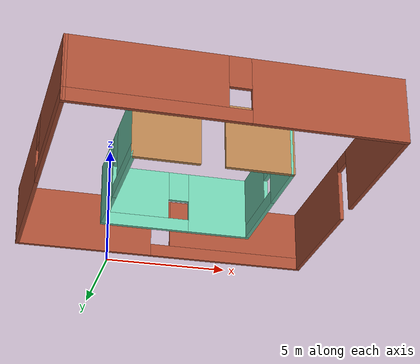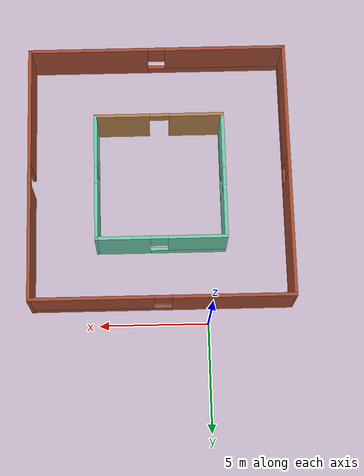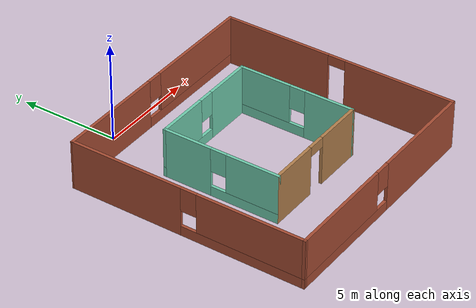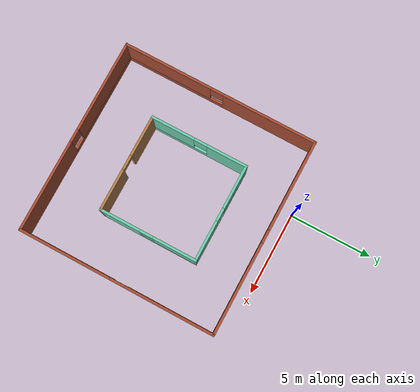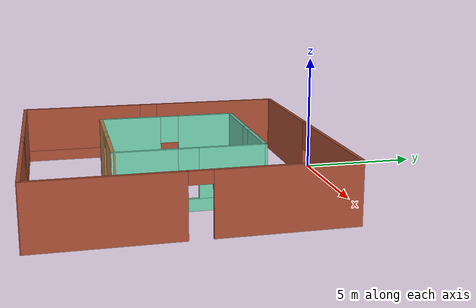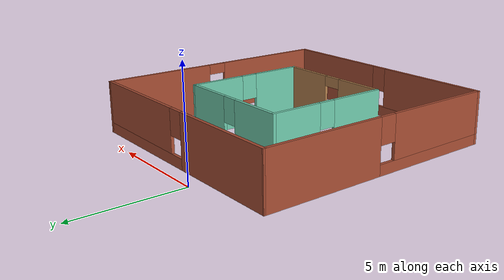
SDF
<?xml version='1.0'?>
<sdf version='1.6'>
  <model name='prasunhouse'>
    <pose frame=''>2.10975 -6.7285 0 0 -0 0</pose>
    <link name='Wall_0'>
      <pose frame=''>-5.92475 0 0 0 0 -1.57164</pose>
      <visual name='Wall_0_Visual_0'>
        <pose frame=''>-3.11856 0 1.25 0 -0 0</pose>
        <geometry>
          <box>
            <size>5.78989 0.15 2.5</size>
          </box>
        </geometry>
        <material>
          <script>
            <uri>file://media/materials/scripts/gazebo.material</uri>
            <name>Gazebo/Bricks</name>
          </script>
          <ambient>1 1 1 1</ambient>
        </material>
        <meta>
          <layer>0</layer>
        </meta>
      </visual>
      <collision name='Wall_0_Collision_0'>
        <geometry>
          <box>
            <size>5.78989 0.15 2.5</size>
          </box>
        </geometry>
        <pose frame=''>-3.11856 0 1.25 0 -0 0</pose>
      </collision>
      <visual name='Wall_0_Visual_1'>
        <pose frame=''>2.89495 0 0.25 0 -0 0</pose>
        <geometry>
          <box>
            <size>6.23711 0.15 0.5</size>
          </box>
        </geometry>
        <material>
          <script>
            <uri>file://media/materials/scripts/gazebo.material</uri>
            <name>Gazebo/Bricks</name>
          </script>
          <ambient>1 1 1 1</ambient>
        </material>
        <meta>
          <layer>0</layer>
        </meta>
      </visual>
      <collision name='Wall_0_Collision_1'>
        <geometry>
          <box>
            <size>6.23711 0.15 0.5</size>
          </box>
        </geometry>
        <pose frame=''>2.89495 0 0.25 0 -0 0</pose>
      </collision>
      <visual name='Wall_0_Visual_2'>
        <pose frame=''>3.29495 0 1.5 0 -0 0</pose>
        <geometry>
          <box>
            <size>5.43711 0.15 2</size>
          </box>
        </geometry>
        <material>
          <script>
            <uri>file://media/materials/scripts/gazebo.material</uri>
            <name>Gazebo/Bricks</name>
          </script>
          <ambient>1 1 1 1</ambient>
        </material>
        <meta>
          <layer>0</layer>
        </meta>
      </visual>
      <collision name='Wall_0_Collision_2'>
        <geometry>
          <box>
            <size>5.43711 0.15 2</size>
          </box>
        </geometry>
        <pose frame=''>3.29495 0 1.5 0 -0 0</pose>
      </collision>
      <visual name='Wall_0_Visual_3'>
        <pose frame=''>0.176392 0 1.9 0 -0 0</pose>
        <geometry>
          <box>
            <size>0.8 0.15 1.2</size>
          </box>
        </geometry>
        <material>
          <script>
            <uri>file://media/materials/scripts/gazebo.material</uri>
            <name>Gazebo/Bricks</name>
          </script>
          <ambient>1 1 1 1</ambient>
        </material>
        <meta>
          <layer>0</layer>
        </meta>
      </visual>
      <collision name='Wall_0_Collision_3'>
        <geometry>
          <box>
            <size>0.8 0.15 1.2</size>
          </box>
        </geometry>
        <pose frame=''>0.176392 0 1.9 0 -0 0</pose>
      </collision>
    </link>
    <link name='Wall_14'>
      <pose frame=''>-0.00525 -5.9385 0 0 -0 3.14159</pose>
      <visual name='Wall_14_Visual_0'>
        <pose frame=''>-3.20955 0 1.25 0 -0 0</pose>
        <geometry>
          <box>
            <size>5.5809 0.15 2.5</size>
          </box>
        </geometry>
        <material>
          <script>
            <uri>file://media/materials/scripts/gazebo.material</uri>
            <name>Gazebo/Bricks</name>
          </script>
          <ambient>1 1 1 1</ambient>
        </material>
        <meta>
          <layer>0</layer>
        </meta>
      </visual>
      <collision name='Wall_14_Collision_0'>
        <geometry>
          <box>
            <size>5.5809 0.15 2.5</size>
          </box>
        </geometry>
        <pose frame=''>-3.20955 0 1.25 0 -0 0</pose>
      </collision>
      <visual name='Wall_14_Visual_1'>
        <pose frame=''>2.79045 0 0.25 0 -0 0</pose>
        <geometry>
          <box>
            <size>6.4191 0.15 0.5</size>
          </box>
        </geometry>
        <material>
          <script>
            <uri>file://media/materials/scripts/gazebo.material</uri>
            <name>Gazebo/Bricks</name>
          </script>
          <ambient>1 1 1 1</ambient>
        </material>
        <meta>
          <layer>0</layer>
        </meta>
      </visual>
      <collision name='Wall_14_Collision_1'>
        <geometry>
          <box>
            <size>6.4191 0.15 0.5</size>
          </box>
        </geometry>
        <pose frame=''>2.79045 0 0.25 0 -0 0</pose>
      </collision>
      <visual name='Wall_14_Visual_2'>
        <pose frame=''>3.19045 0 1.5 0 -0 0</pose>
        <geometry>
          <box>
            <size>5.6191 0.15 2</size>
          </box>
        </geometry>
        <material>
          <script>
            <uri>file://media/materials/scripts/gazebo.material</uri>
            <name>Gazebo/Bricks</name>
          </script>
          <ambient>1 1 1 1</ambient>
        </material>
        <meta>
          <layer>0</layer>
        </meta>
      </visual>
      <collision name='Wall_14_Collision_2'>
        <geometry>
          <box>
            <size>5.6191 0.15 2</size>
          </box>
        </geometry>
        <pose frame=''>3.19045 0 1.5 0 -0 0</pose>
      </collision>
      <visual name='Wall_14_Visual_3'>
        <pose frame=''>-0.0191 0 1.9 0 -0 0</pose>
        <geometry>
          <box>
            <size>0.8 0.15 1.2</size>
          </box>
        </geometry>
        <material>
          <script>
            <uri>file://media/materials/scripts/gazebo.material</uri>
            <name>Gazebo/Bricks</name>
          </script>
          <ambient>1 1 1 1</ambient>
        </material>
        <meta>
          <layer>0</layer>
        </meta>
      </visual>
      <collision name='Wall_14_Collision_3'>
        <geometry>
          <box>
            <size>0.8 0.15 1.2</size>
          </box>
        </geometry>
        <pose frame=''>-0.0191 0 1.9 0 -0 0</pose>
      </collision>
    </link>
    <link name='Wall_2'>
      <pose frame=''>0.00525 5.9385 0 0 -0 0</pose>
      <visual name='Wall_2_Visual_0'>
        <pose frame=''>-3.22646 0 1.25 0 -0 0</pose>
        <geometry>
          <box>
            <size>5.54707 0.15 2.5</size>
          </box>
        </geometry>
        <material>
          <script>
            <uri>file://media/materials/scripts/gazebo.material</uri>
            <name>Gazebo/Bricks</name>
          </script>
          <ambient>1 1 1 1</ambient>
        </material>
        <meta>
          <layer>0</layer>
        </meta>
      </visual>
      <collision name='Wall_2_Collision_0'>
        <geometry>
          <box>
            <size>5.54707 0.15 2.5</size>
          </box>
        </geometry>
        <pose frame=''>-3.22646 0 1.25 0 -0 0</pose>
      </collision>
      <visual name='Wall_2_Visual_1'>
        <pose frame=''>2.77354 0 0.25 0 -0 0</pose>
        <geometry>
          <box>
            <size>6.45293 0.15 0.5</size>
          </box>
        </geometry>
        <material>
          <script>
            <uri>file://media/materials/scripts/gazebo.material</uri>
            <name>Gazebo/Bricks</name>
          </script>
          <ambient>1 1 1 1</ambient>
        </material>
        <meta>
          <layer>0</layer>
        </meta>
      </visual>
      <collision name='Wall_2_Collision_1'>
        <geometry>
          <box>
            <size>6.45293 0.15 0.5</size>
          </box>
        </geometry>
        <pose frame=''>2.77354 0 0.25 0 -0 0</pose>
      </collision>
      <visual name='Wall_2_Visual_2'>
        <pose frame=''>3.17354 0 1.5 0 -0 0</pose>
        <geometry>
          <box>
            <size>5.65293 0.15 2</size>
          </box>
        </geometry>
        <material>
          <script>
            <uri>file://media/materials/scripts/gazebo.material</uri>
            <name>Gazebo/Bricks</name>
          </script>
          <ambient>1 1 1 1</ambient>
        </material>
        <meta>
          <layer>0</layer>
        </meta>
      </visual>
      <collision name='Wall_2_Collision_2'>
        <geometry>
          <box>
            <size>5.65293 0.15 2</size>
          </box>
        </geometry>
        <pose frame=''>3.17354 0 1.5 0 -0 0</pose>
      </collision>
      <visual name='Wall_2_Visual_3'>
        <pose frame=''>-0.052928 0 1.9 0 -0 0</pose>
        <geometry>
          <box>
            <size>0.8 0.15 1.2</size>
          </box>
        </geometry>
        <material>
          <script>
            <uri>file://media/materials/scripts/gazebo.material</uri>
            <name>Gazebo/Bricks</name>
          </script>
          <ambient>1 1 1 1</ambient>
        </material>
        <meta>
          <layer>0</layer>
        </meta>
      </visual>
      <collision name='Wall_2_Collision_3'>
        <geometry>
          <box>
            <size>0.8 0.15 1.2</size>
          </box>
        </geometry>
        <pose frame=''>-0.052928 0 1.9 0 -0 0</pose>
      </collision>
    </link>
    <link name='Wall_25'>
      <pose frame=''>-2.94775 0.2825 0 0 0 -1.5708</pose>
      <visual name='Wall_25_Visual_0'>
        <pose frame=''>-1.74744 0 1.25 0 -0 0</pose>
        <geometry>
          <box>
            <size>2.50512 0.15 2.5</size>
          </box>
        </geometry>
        <material>
          <script>
            <uri>file://media/materials/scripts/gazebo.material</uri>
            <name>Gazebo/Grey</name>
          </script>
          <ambient>0.435294 0.796078 0.67451 1</ambient>
        </material>
        <meta>
          <layer>0</layer>
        </meta>
      </visual>
      <collision name='Wall_25_Collision_0'>
        <geometry>
          <box>
            <size>2.50512 0.15 2.5</size>
          </box>
        </geometry>
        <pose frame=''>-1.74744 0 1.25 0 -0 0</pose>
      </collision>
      <visual name='Wall_25_Visual_1'>
        <pose frame=''>1.25256 0 0.25 0 -0 0</pose>
        <geometry>
          <box>
            <size>3.49488 0.15 0.5</size>
          </box>
        </geometry>
        <material>
          <script>
            <uri>file://media/materials/scripts/gazebo.material</uri>
            <name>Gazebo/Grey</name>
          </script>
          <ambient>0.435294 0.796078 0.67451 1</ambient>
        </material>
        <meta>
          <layer>0</layer>
        </meta>
      </visual>
      <collision name='Wall_25_Collision_1'>
        <geometry>
          <box>
            <size>3.49488 0.15 0.5</size>
          </box>
        </geometry>
        <pose frame=''>1.25256 0 0.25 0 -0 0</pose>
      </collision>
      <visual name='Wall_25_Visual_2'>
        <pose frame=''>1.65256 0 1.5 0 -0 0</pose>
        <geometry>
          <box>
            <size>2.69488 0.15 2</size>
          </box>
        </geometry>
        <material>
          <script>
            <uri>file://media/materials/scripts/gazebo.material</uri>
            <name>Gazebo/Grey</name>
          </script>
          <ambient>0.435294 0.796078 0.67451 1</ambient>
        </material>
        <meta>
          <layer>0</layer>
        </meta>
      </visual>
      <collision name='Wall_25_Collision_2'>
        <geometry>
          <box>
            <size>2.69488 0.15 2</size>
          </box>
        </geometry>
        <pose frame=''>1.65256 0 1.5 0 -0 0</pose>
      </collision>
      <visual name='Wall_25_Visual_3'>
        <pose frame=''>-0.094884 0 1.9 0 -0 0</pose>
        <geometry>
          <box>
            <size>0.8 0.15 1.2</size>
          </box>
        </geometry>
        <material>
          <script>
            <uri>file://media/materials/scripts/gazebo.material</uri>
            <name>Gazebo/Grey</name>
          </script>
          <ambient>0.435294 0.796078 0.67451 1</ambient>
        </material>
        <meta>
          <layer>0</layer>
        </meta>
      </visual>
      <collision name='Wall_25_Collision_3'>
        <geometry>
          <box>
            <size>0.8 0.15 1.2</size>
          </box>
        </geometry>
        <pose frame=''>-0.094884 0 1.9 0 -0 0</pose>
      </collision>
    </link>
    <link name='Wall_26'>
      <pose frame=''>-0.02275 -2.6425 0 0 -0 0</pose>
      <visual name='Wall_26_Visual_0'>
        <pose frame=''>-1.73746 0 1.25 0 -0 0</pose>
        <geometry>
          <box>
            <size>2.52507 0.15 2.5</size>
          </box>
        </geometry>
        <material>
          <script>
            <uri>file://media/materials/scripts/gazebo.material</uri>
            <name>Gazebo/Wood</name>
          </script>
          <ambient>1 1 1 1</ambient>
        </material>
        <meta>
          <layer>0</layer>
        </meta>
      </visual>
      <collision name='Wall_26_Collision_0'>
        <geometry>
          <box>
            <size>2.52507 0.15 2.5</size>
          </box>
        </geometry>
        <pose frame=''>-1.73746 0 1.25 0 -0 0</pose>
      </collision>
      <visual name='Wall_26_Visual_1'>
        <pose frame=''>1.71254 0 1.25 0 -0 0</pose>
        <geometry>
          <box>
            <size>2.57493 0.15 2.5</size>
          </box>
        </geometry>
        <material>
          <script>
            <uri>file://media/materials/scripts/gazebo.material</uri>
            <name>Gazebo/Wood</name>
          </script>
          <ambient>1 1 1 1</ambient>
        </material>
        <meta>
          <layer>0</layer>
        </meta>
      </visual>
      <collision name='Wall_26_Collision_1'>
        <geometry>
          <box>
            <size>2.57493 0.15 2.5</size>
          </box>
        </geometry>
        <pose frame=''>1.71254 0 1.25 0 -0 0</pose>
      </collision>
      <visual name='Wall_26_Visual_2'>
        <pose frame=''>-0.024928 0 2.25 0 -0 0</pose>
        <geometry>
          <box>
            <size>0.9 0.15 0.5</size>
          </box>
        </geometry>
        <material>
          <script>
            <uri>file://media/materials/scripts/gazebo.material</uri>
            <name>Gazebo/Wood</name>
          </script>
          <ambient>1 1 1 1</ambient>
        </material>
        <meta>
          <layer>0</layer>
        </meta>
      </visual>
      <collision name='Wall_26_Collision_2'>
        <geometry>
          <box>
            <size>0.9 0.15 0.5</size>
          </box>
        </geometry>
        <pose frame=''>-0.024928 0 2.25 0 -0 0</pose>
      </collision>
    </link>
    <link name='Wall_27'>
      <pose frame=''>2.90175 0.2825 0 0 -0 1.57097</pose>
      <visual name='Wall_27_Visual_0'>
        <pose frame=''>-1.74486 0 1.25 0 -0 0</pose>
        <geometry>
          <box>
            <size>2.51028 0.15 2.5</size>
          </box>
        </geometry>
        <material>
          <script>
            <uri>file://media/materials/scripts/gazebo.material</uri>
            <name>Gazebo/Grey</name>
          </script>
          <ambient>0.435294 0.796078 0.67451 1</ambient>
        </material>
        <meta>
          <layer>0</layer>
        </meta>
      </visual>
      <collision name='Wall_27_Collision_0'>
        <geometry>
          <box>
            <size>2.51028 0.15 2.5</size>
          </box>
        </geometry>
        <pose frame=''>-1.74486 0 1.25 0 -0 0</pose>
      </collision>
      <visual name='Wall_27_Visual_1'>
        <pose frame=''>1.25514 0 0.25 0 -0 0</pose>
        <geometry>
          <box>
            <size>3.48972 0.15 0.5</size>
          </box>
        </geometry>
        <material>
          <script>
            <uri>file://media/materials/scripts/gazebo.material</uri>
            <name>Gazebo/Grey</name>
          </script>
          <ambient>0.435294 0.796078 0.67451 1</ambient>
        </material>
        <meta>
          <layer>0</layer>
        </meta>
      </visual>
      <collision name='Wall_27_Collision_1'>
        <geometry>
          <box>
            <size>3.48972 0.15 0.5</size>
          </box>
        </geometry>
        <pose frame=''>1.25514 0 0.25 0 -0 0</pose>
      </collision>
      <visual name='Wall_27_Visual_2'>
        <pose frame=''>1.65514 0 1.5 0 -0 0</pose>
        <geometry>
          <box>
            <size>2.68972 0.15 2</size>
          </box>
        </geometry>
        <material>
          <script>
            <uri>file://media/materials/scripts/gazebo.material</uri>
            <name>Gazebo/Grey</name>
          </script>
          <ambient>0.435294 0.796078 0.67451 1</ambient>
        </material>
        <meta>
          <layer>0</layer>
        </meta>
      </visual>
      <collision name='Wall_27_Collision_2'>
        <geometry>
          <box>
            <size>2.68972 0.15 2</size>
          </box>
        </geometry>
        <pose frame=''>1.65514 0 1.5 0 -0 0</pose>
      </collision>
      <visual name='Wall_27_Visual_3'>
        <pose frame=''>-0.089721 0 1.9 0 -0 0</pose>
        <geometry>
          <box>
            <size>0.8 0.15 1.2</size>
          </box>
        </geometry>
        <material>
          <script>
            <uri>file://media/materials/scripts/gazebo.material</uri>
            <name>Gazebo/Grey</name>
          </script>
          <ambient>0.435294 0.796078 0.67451 1</ambient>
        </material>
        <meta>
          <layer>0</layer>
        </meta>
      </visual>
      <collision name='Wall_27_Collision_3'>
        <geometry>
          <box>
            <size>0.8 0.15 1.2</size>
          </box>
        </geometry>
        <pose frame=''>-0.089721 0 1.9 0 -0 0</pose>
      </collision>
    </link>
    <link name='Wall_28'>
      <pose frame=''>-0.02325 3.2075 0 0 -0 3.14159</pose>
      <visual name='Wall_28_Visual_0'>
        <pose frame=''>-1.74906 0 1.25 0 -0 0</pose>
        <geometry>
          <box>
            <size>2.50087 0.15 2.5</size>
          </box>
        </geometry>
        <material>
          <script>
            <uri>file://media/materials/scripts/gazebo.material</uri>
            <name>Gazebo/Grey</name>
          </script>
          <ambient>0.435294 0.796078 0.67451 1</ambient>
        </material>
        <meta>
          <layer>0</layer>
        </meta>
      </visual>
      <collision name='Wall_28_Collision_0'>
        <geometry>
          <box>
            <size>2.50087 0.15 2.5</size>
          </box>
        </geometry>
        <pose frame=''>-1.74906 0 1.25 0 -0 0</pose>
      </collision>
      <visual name='Wall_28_Visual_1'>
        <pose frame=''>1.25044 0 0.25 0 -0 0</pose>
        <geometry>
          <box>
            <size>3.49813 0.15 0.5</size>
          </box>
        </geometry>
        <material>
          <script>
            <uri>file://media/materials/scripts/gazebo.material</uri>
            <name>Gazebo/Grey</name>
          </script>
          <ambient>0.435294 0.796078 0.67451 1</ambient>
        </material>
        <meta>
          <layer>0</layer>
        </meta>
      </visual>
      <collision name='Wall_28_Collision_1'>
        <geometry>
          <box>
            <size>3.49813 0.15 0.5</size>
          </box>
        </geometry>
        <pose frame=''>1.25044 0 0.25 0 -0 0</pose>
      </collision>
      <visual name='Wall_28_Visual_2'>
        <pose frame=''>1.65044 0 1.5 0 -0 0</pose>
        <geometry>
          <box>
            <size>2.69813 0.15 2</size>
          </box>
        </geometry>
        <material>
          <script>
            <uri>file://media/materials/scripts/gazebo.material</uri>
            <name>Gazebo/Grey</name>
          </script>
          <ambient>0.435294 0.796078 0.67451 1</ambient>
        </material>
        <meta>
          <layer>0</layer>
        </meta>
      </visual>
      <collision name='Wall_28_Collision_2'>
        <geometry>
          <box>
            <size>2.69813 0.15 2</size>
          </box>
        </geometry>
        <pose frame=''>1.65044 0 1.5 0 -0 0</pose>
      </collision>
      <visual name='Wall_28_Visual_3'>
        <pose frame=''>-0.098628 0 1.9 0 -0 0</pose>
        <geometry>
          <box>
            <size>0.8 0.15 1.2</size>
          </box>
        </geometry>
        <material>
          <script>
            <uri>file://media/materials/scripts/gazebo.material</uri>
            <name>Gazebo/Grey</name>
          </script>
          <ambient>0.435294 0.796078 0.67451 1</ambient>
        </material>
        <meta>
          <layer>0</layer>
        </meta>
      </visual>
      <collision name='Wall_28_Collision_3'>
        <geometry>
          <box>
            <size>0.8 0.15 1.2</size>
          </box>
        </geometry>
        <pose frame=''>-0.098628 0 1.9 0 -0 0</pose>
      </collision>
    </link>
    <link name='Wall_6'>
      <pose frame=''>5.93025 0.0135 0 0 0 -1.5708</pose>
      <visual name='Wall_6_Visual_0'>
        <pose frame=''>-3.25312 0 1.25 0 -0 0</pose>
        <geometry>
          <box>
            <size>5.49376 0.15 2.5</size>
          </box>
        </geometry>
        <material>
          <script>
            <uri>file://media/materials/scripts/gazebo.material</uri>
            <name>Gazebo/Bricks</name>
          </script>
          <ambient>1 1 1 1</ambient>
        </material>
        <meta>
          <layer>0</layer>
        </meta>
      </visual>
      <collision name='Wall_6_Collision_0'>
        <geometry>
          <box>
            <size>5.49376 0.15 2.5</size>
          </box>
        </geometry>
        <pose frame=''>-3.25312 0 1.25 0 -0 0</pose>
      </collision>
      <visual name='Wall_6_Visual_1'>
        <pose frame=''>3.19688 0 1.25 0 -0 0</pose>
        <geometry>
          <box>
            <size>5.60625 0.15 2.5</size>
          </box>
        </geometry>
        <material>
          <script>
            <uri>file://media/materials/scripts/gazebo.material</uri>
            <name>Gazebo/Bricks</name>
          </script>
          <ambient>1 1 1 1</ambient>
        </material>
        <meta>
          <layer>0</layer>
        </meta>
      </visual>
      <collision name='Wall_6_Collision_1'>
        <geometry>
          <box>
            <size>5.60625 0.15 2.5</size>
          </box>
        </geometry>
        <pose frame=''>3.19688 0 1.25 0 -0 0</pose>
      </collision>
      <visual name='Wall_6_Visual_2'>
        <pose frame=''>-0.056245 0 2.25 0 -0 0</pose>
        <geometry>
          <box>
            <size>0.9 0.15 0.5</size>
          </box>
        </geometry>
        <material>
          <script>
            <uri>file://media/materials/scripts/gazebo.material</uri>
            <name>Gazebo/Bricks</name>
          </script>
          <ambient>1 1 1 1</ambient>
        </material>
        <meta>
          <layer>0</layer>
        </meta>
      </visual>
      <collision name='Wall_6_Collision_2'>
        <geometry>
          <box>
            <size>0.9 0.15 0.5</size>
          </box>
        </geometry>
        <pose frame=''>-0.056245 0 2.25 0 -0 0</pose>
      </collision>
    </link>
    <static>1</static>
  </model>
</sdf>
